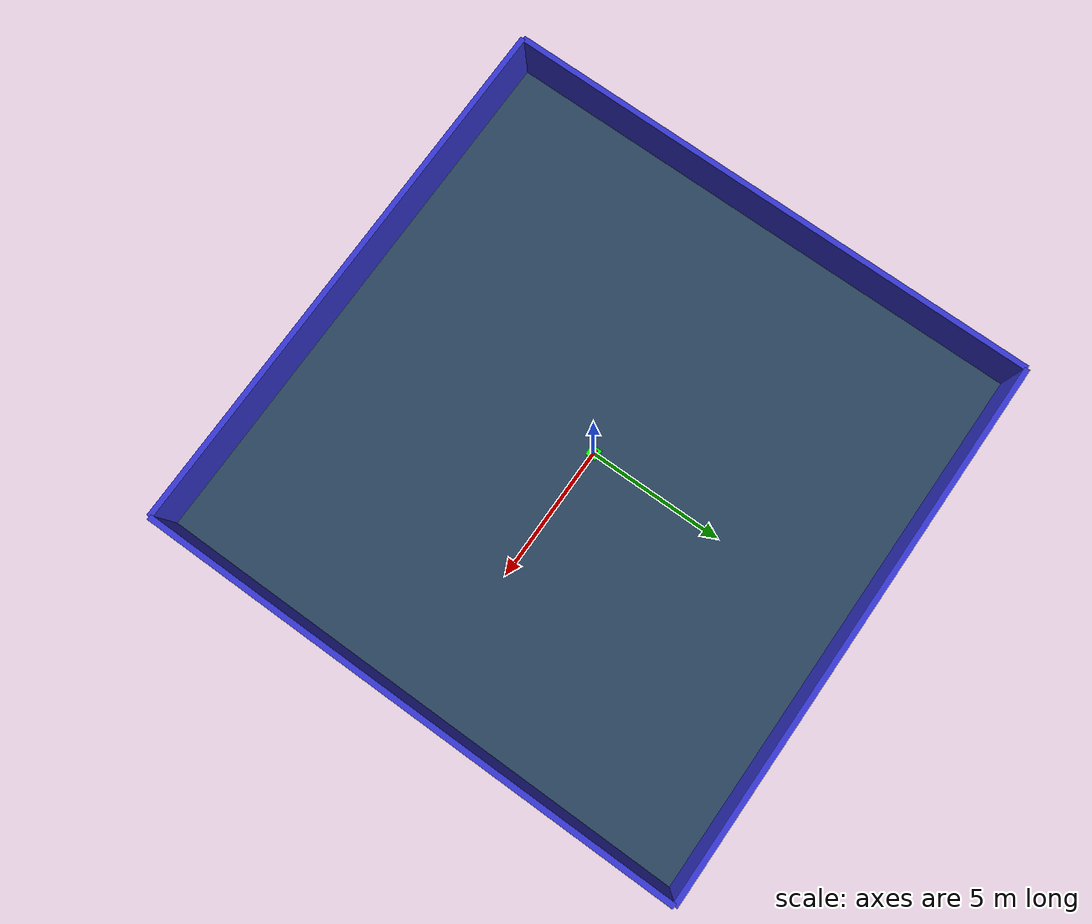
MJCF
<mujoco model="moveable_env" >
    <asset>
        <texture name="grid" type="2d" builtin="checker" rgb1=".1 .2 .3"
        rgb2=".2 .3 .4" width="300" height="300" mark="edge" markrgb=".2 .3 .4"/>
        <material name="grid" texture="grid" texrepeat="2 2" texuniform="true"
        reflectance="0"/>
    </asset>
    <compiler angle="degree" coordinate="local" />
    <option gravity="0 0 -9.81" />

    <size njmax="1000" nconmax="100" />

    <visual>
        <global offwidth="1920"/>
    </visual>
    <visual>
        <global offheight="1080"/>
    </visual>

    <worldbody>
        <geom name="ground" type="plane" pos="0 0 0" size="10 10 .1" material="grid"/>
        <camera name="top" pos="0 0 18" euler="0 0 0"/>

        <!-- Free moving cube -->
        <body name="agent" pos="0 0 0.1">
            <freejoint name="agentjoint" />
            <geom type="box" size="0.1 0.1 0.1" rgba="0.8 0.1 0.1 1"/>
            <inertial pos="0 0 0" mass="1" diaginertia="0.01 0.01 0.01"/>
        </body>

        <!-- Target -->
        <body name="target" mocap="true" pos="0 0 0.01">
            <geom type="box" size="0.2 0.2 0.01" rgba="0 1 0 1"/>
        </body>

        <!-- Four movable walls -->
        <body name="wally1" mocap="true" pos="0 -10 1">
            <geom type="box" size="10 0.1 1" rgba="0.2 0.2 0.8 1"/>
        </body>
        <body name="wally2" mocap="true" pos="0 10 1">
            <geom type="box" size="10 0.1 1" rgba="0.2 0.2 0.8 1"/>
        </body>
        <body name="wallx1" mocap="true" pos="-10 0 1">
            <geom type="box" size="0.1 10 1" rgba="0.2 0.2 0.8 1"/>
        </body>
        <body name="wallx2" mocap="true" pos="10 0 1">
            <geom type="box" size="0.1 10 1" rgba="0.2 0.2 0.8 1"/>
        </body>
    </worldbody>

    <actuator>
        <!-- actuators can be added here if needed -->
    </actuator>
    </mujoco>
